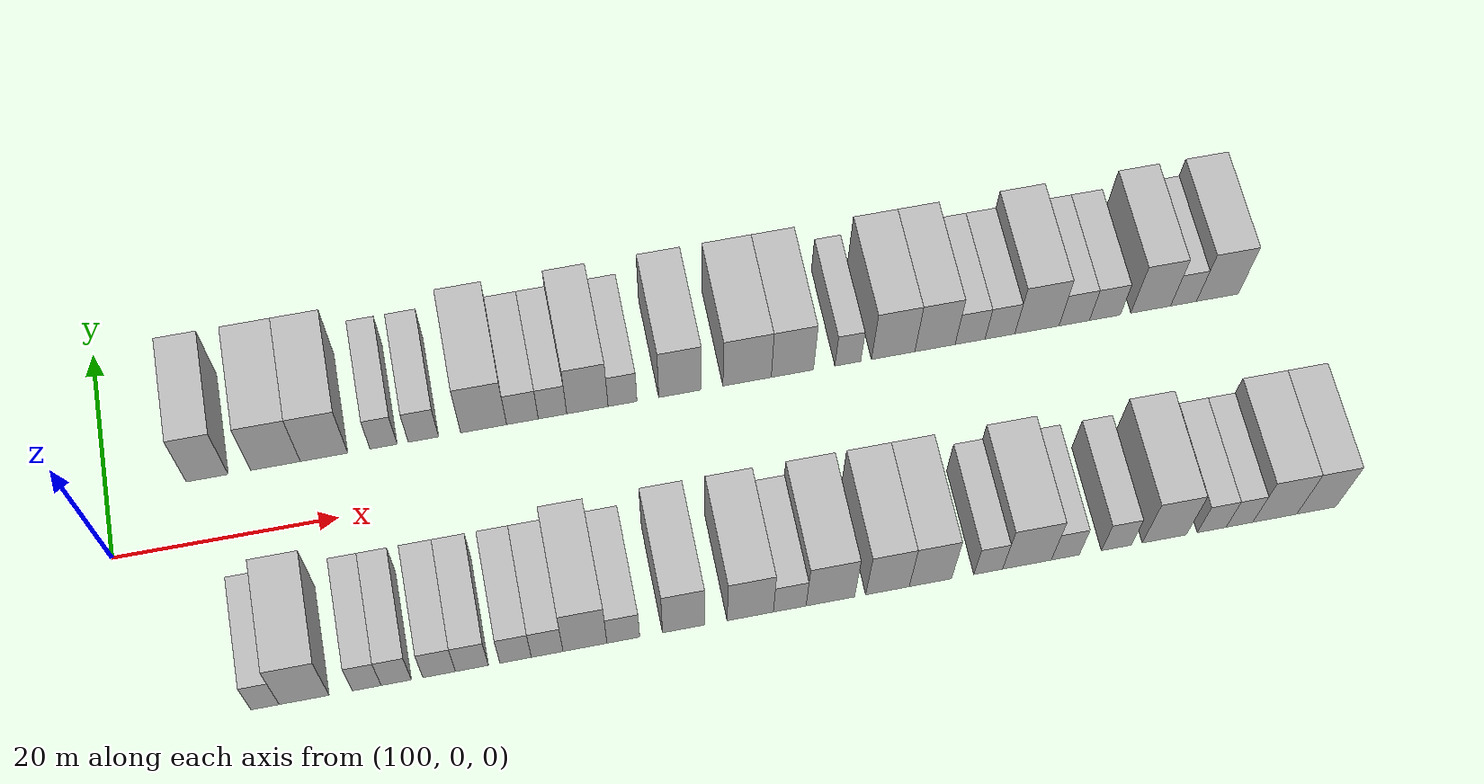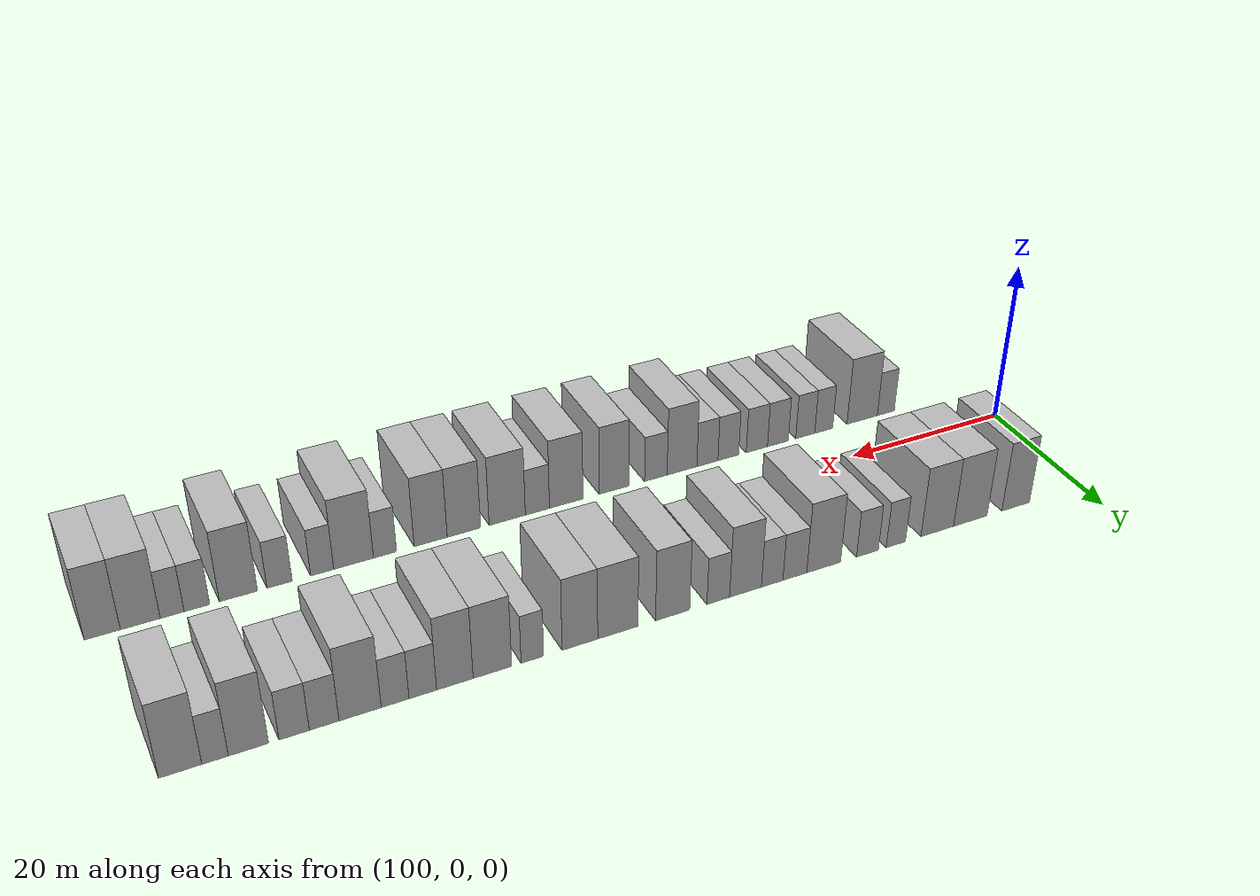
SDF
<sdf version="1.6">
 <world name="default">
  <model name="building_24">
   <static>1</static>
   <pose>108.9423 11.0000 0 0.000000 0.000000 1.570796</pose>
   <link name="link">
    <pose>0 0 4.50 0 0 0</pose>
    <collision name="collision"><geometry><box><size>10.0000 3.7424 9.0000</size></box></geometry></collision>
    <visual name="visual">
     <cast_shadows>0</cast_shadows>
     <geometry><box><size>10.0000 3.7424 9.0000</size></box></geometry>
     <material>
      <script>
       <uri>model://HANNAS_wall/materials/scripts</uri>
       <uri>model://HANNAS_wall/materials/textures</uri>
       <name>vrc/HANNAS_wall</name>
      </script>
     </material>
    </visual>
   </link>
  </model>
  <model name="building_25">
   <static>1</static>
   <pose>115.0368 11.0000 0 0.000000 0.000000 1.570796</pose>
   <link name="link">
    <pose>0 0 4.50 0 0 0</pose>
    <collision name="collision"><geometry><box><size>10.0000 4.4467 9.0000</size></box></geometry></collision>
    <visual name="visual">
     <cast_shadows>0</cast_shadows>
     <geometry><box><size>10.0000 4.4467 9.0000</size></box></geometry>
     <material>
      <script>
       <uri>model://HANNAS_wall/materials/scripts</uri>
       <uri>model://HANNAS_wall/materials/textures</uri>
       <name>vrc/HANNAS_wall</name>
      </script>
     </material>
    </visual>
   </link>
  </model>
  <model name="building_26">
   <static>1</static>
   <pose>119.3937 11.0000 0 0.000000 0.000000 1.570796</pose>
   <link name="link">
    <pose>0 0 4.50 0 0 0</pose>
    <collision name="collision"><geometry><box><size>10.0000 4.2671 9.0000</size></box></geometry></collision>
    <visual name="visual">
     <cast_shadows>0</cast_shadows>
     <geometry><box><size>10.0000 4.2671 9.0000</size></box></geometry>
     <material>
      <script>
       <uri>model://HANNAS_wall/materials/scripts</uri>
       <uri>model://HANNAS_wall/materials/textures</uri>
       <name>vrc/HANNAS_wall</name>
      </script>
     </material>
    </visual>
   </link>
  </model>
  <model name="building_27">
   <static>1</static>
   <pose>124.7551 11.0000 0 0.000000 0.000000 1.570796</pose>
   <link name="link">
    <pose>0 0 3.00 0 0 0</pose>
    <collision name="collision"><geometry><box><size>10.0000 2.4558 6.0000</size></box></geometry></collision>
    <visual name="visual">
     <cast_shadows>0</cast_shadows>
     <geometry><box><size>10.0000 2.4558 6.0000</size></box></geometry>
     <material>
      <script>
       <uri>model://HANNAS_wall/materials/scripts</uri>
       <uri>model://HANNAS_wall/materials/textures</uri>
       <name>vrc/HANNAS_wall</name>
      </script>
     </material>
    </visual>
   </link>
  </model>
  <model name="building_28">
   <static>1</static>
   <pose>128.3586 11.0000 0 0.000000 0.000000 1.570796</pose>
   <link name="link">
    <pose>0 0 3.00 0 0 0</pose>
    <collision name="collision"><geometry><box><size>10.0000 2.7511 6.0000</size></box></geometry></collision>
    <visual name="visual">
     <cast_shadows>0</cast_shadows>
     <geometry><box><size>10.0000 2.7511 6.0000</size></box></geometry>
     <material>
      <script>
       <uri>model://HANNAS_wall/materials/scripts</uri>
       <uri>model://HANNAS_wall/materials/textures</uri>
       <name>vrc/HANNAS_wall</name>
      </script>
     </material>
    </visual>
   </link>
  </model>
  <model name="building_29">
   <static>1</static>
   <pose>133.8194 11.0000 0 0.000000 0.000000 1.570796</pose>
   <link name="link">
    <pose>0 0 4.50 0 0 0</pose>
    <collision name="collision"><geometry><box><size>10.0000 4.1705 9.0000</size></box></geometry></collision>
    <visual name="visual">
     <cast_shadows>0</cast_shadows>
     <geometry><box><size>10.0000 4.1705 9.0000</size></box></geometry>
     <material>
      <script>
       <uri>model://HANNAS_wall/materials/scripts</uri>
       <uri>model://HANNAS_wall/materials/textures</uri>
       <name>vrc/HANNAS_wall</name>
      </script>
     </material>
    </visual>
   </link>
  </model>
  <model name="building_30">
   <static>1</static>
   <pose>137.3507 11.0000 0 0.000000 0.000000 1.570796</pose>
   <link name="link">
    <pose>0 0 3.00 0 0 0</pose>
    <collision name="collision"><geometry><box><size>10.0000 2.8921 6.0000</size></box></geometry></collision>
    <visual name="visual">
     <cast_shadows>0</cast_shadows>
     <geometry><box><size>10.0000 2.8921 6.0000</size></box></geometry>
     <material>
      <script>
       <uri>model://HANNAS_wall/materials/scripts</uri>
       <uri>model://HANNAS_wall/materials/textures</uri>
       <name>vrc/HANNAS_wall</name>
      </script>
     </material>
    </visual>
   </link>
  </model>
  <model name="building_31">
   <static>1</static>
   <pose>140.0974 11.0000 0 0.000000 0.000000 1.570796</pose>
   <link name="link">
    <pose>0 0 3.00 0 0 0</pose>
    <collision name="collision"><geometry><box><size>10.0000 2.6012 6.0000</size></box></geometry></collision>
    <visual name="visual">
     <cast_shadows>0</cast_shadows>
     <geometry><box><size>10.0000 2.6012 6.0000</size></box></geometry>
     <material>
      <script>
       <uri>model://HANNAS_wall/materials/scripts</uri>
       <uri>model://HANNAS_wall/materials/textures</uri>
       <name>vrc/HANNAS_wall</name>
      </script>
     </material>
    </visual>
   </link>
  </model>
  <model name="building_32">
   <static>1</static>
   <pose>143.2876 11.0000 0 0.000000 0.000000 1.570796</pose>
   <link name="link">
    <pose>0 0 4.50 0 0 0</pose>
    <collision name="collision"><geometry><box><size>10.0000 3.7792 9.0000</size></box></geometry></collision>
    <visual name="visual">
     <cast_shadows>0</cast_shadows>
     <geometry><box><size>10.0000 3.7792 9.0000</size></box></geometry>
     <material>
      <script>
       <uri>model://HANNAS_wall/materials/scripts</uri>
       <uri>model://HANNAS_wall/materials/textures</uri>
       <name>vrc/HANNAS_wall</name>
      </script>
     </material>
    </visual>
   </link>
  </model>
  <model name="building_33">
   <static>1</static>
   <pose>146.5038 11.0000 0 0.000000 0.000000 1.570796</pose>
   <link name="link">
    <pose>0 0 3.00 0 0 0</pose>
    <collision name="collision"><geometry><box><size>10.0000 2.6533 6.0000</size></box></geometry></collision>
    <visual name="visual">
     <cast_shadows>0</cast_shadows>
     <geometry><box><size>10.0000 2.6533 6.0000</size></box></geometry>
     <material>
      <script>
       <uri>model://HANNAS_wall/materials/scripts</uri>
       <uri>model://HANNAS_wall/materials/textures</uri>
       <name>vrc/HANNAS_wall</name>
      </script>
     </material>
    </visual>
   </link>
  </model>
  <model name="building_34">
   <static>1</static>
   <pose>151.7915 11.0000 0 0.000000 0.000000 1.570796</pose>
   <link name="link">
    <pose>0 0 4.50 0 0 0</pose>
    <collision name="collision"><geometry><box><size>10.0000 3.9221 9.0000</size></box></geometry></collision>
    <visual name="visual">
     <cast_shadows>0</cast_shadows>
     <geometry><box><size>10.0000 3.9221 9.0000</size></box></geometry>
     <material>
      <script>
       <uri>model://HANNAS_wall/materials/scripts</uri>
       <uri>model://HANNAS_wall/materials/textures</uri>
       <name>vrc/HANNAS_wall</name>
      </script>
     </material>
    </visual>
   </link>
  </model>
  <model name="building_35">
   <static>1</static>
   <pose>157.9924 11.0000 0 0.000000 0.000000 1.570796</pose>
   <link name="link">
    <pose>0 0 4.50 0 0 0</pose>
    <collision name="collision"><geometry><box><size>10.0000 4.4797 9.0000</size></box></geometry></collision>
    <visual name="visual">
     <cast_shadows>0</cast_shadows>
     <geometry><box><size>10.0000 4.4797 9.0000</size></box></geometry>
     <material>
      <script>
       <uri>model://HANNAS_wall/materials/scripts</uri>
       <uri>model://HANNAS_wall/materials/textures</uri>
       <name>vrc/HANNAS_wall</name>
      </script>
     </material>
    </visual>
   </link>
  </model>
  <model name="building_36">
   <static>1</static>
   <pose>162.1914 11.0000 0 0.000000 0.000000 1.570796</pose>
   <link name="link">
    <pose>0 0 4.50 0 0 0</pose>
    <collision name="collision"><geometry><box><size>10.0000 3.9184 9.0000</size></box></geometry></collision>
    <visual name="visual">
     <cast_shadows>0</cast_shadows>
     <geometry><box><size>10.0000 3.9184 9.0000</size></box></geometry>
     <material>
      <script>
       <uri>model://HANNAS_wall/materials/scripts</uri>
       <uri>model://HANNAS_wall/materials/textures</uri>
       <name>vrc/HANNAS_wall</name>
      </script>
     </material>
    </visual>
   </link>
  </model>
  <model name="building_37">
   <static>1</static>
   <pose>167.3576 11.0000 0 0.000000 0.000000 1.570796</pose>
   <link name="link">
    <pose>0 0 3.00 0 0 0</pose>
    <collision name="collision"><geometry><box><size>10.0000 2.4139 6.0000</size></box></geometry></collision>
    <visual name="visual">
     <cast_shadows>0</cast_shadows>
     <geometry><box><size>10.0000 2.4139 6.0000</size></box></geometry>
     <material>
      <script>
       <uri>model://HANNAS_wall/materials/scripts</uri>
       <uri>model://HANNAS_wall/materials/textures</uri>
       <name>vrc/HANNAS_wall</name>
      </script>
     </material>
    </visual>
   </link>
  </model>
  <model name="building_38">
   <static>1</static>
   <pose>171.5949 11.0000 0 0.000000 0.000000 1.570796</pose>
   <link name="link">
    <pose>0 0 4.50 0 0 0</pose>
    <collision name="collision"><geometry><box><size>10.0000 4.0607 9.0000</size></box></geometry></collision>
    <visual name="visual">
     <cast_shadows>0</cast_shadows>
     <geometry><box><size>10.0000 4.0607 9.0000</size></box></geometry>
     <material>
      <script>
       <uri>model://HANNAS_wall/materials/scripts</uri>
       <uri>model://HANNAS_wall/materials/textures</uri>
       <name>vrc/HANNAS_wall</name>
      </script>
     </material>
    </visual>
   </link>
  </model>
  <model name="building_39">
   <static>1</static>
   <pose>175.5178 11.0000 0 0.000000 0.000000 1.570796</pose>
   <link name="link">
    <pose>0 0 4.50 0 0 0</pose>
    <collision name="collision"><geometry><box><size>10.0000 3.7851 9.0000</size></box></geometry></collision>
    <visual name="visual">
     <cast_shadows>0</cast_shadows>
     <geometry><box><size>10.0000 3.7851 9.0000</size></box></geometry>
     <material>
      <script>
       <uri>model://HANNAS_wall/materials/scripts</uri>
       <uri>model://HANNAS_wall/materials/textures</uri>
       <name>vrc/HANNAS_wall</name>
      </script>
     </material>
    </visual>
   </link>
  </model>
  <model name="building_40">
   <static>1</static>
   <pose>178.8198 11.0000 0 0.000000 0.000000 1.570796</pose>
   <link name="link">
    <pose>0 0 3.00 0 0 0</pose>
    <collision name="collision"><geometry><box><size>10.0000 2.8188 6.0000</size></box></geometry></collision>
    <visual name="visual">
     <cast_shadows>0</cast_shadows>
     <geometry><box><size>10.0000 2.8188 6.0000</size></box></geometry>
     <material>
      <script>
       <uri>model://HANNAS_wall/materials/scripts</uri>
       <uri>model://HANNAS_wall/materials/textures</uri>
       <name>vrc/HANNAS_wall</name>
      </script>
     </material>
    </visual>
   </link>
  </model>
  <model name="building_41">
   <static>1</static>
   <pose>181.6317 11.0000 0 0.000000 0.000000 1.570796</pose>
   <link name="link">
    <pose>0 0 3.00 0 0 0</pose>
    <collision name="collision"><geometry><box><size>10.0000 2.8050 6.0000</size></box></geometry></collision>
    <visual name="visual">
     <cast_shadows>0</cast_shadows>
     <geometry><box><size>10.0000 2.8050 6.0000</size></box></geometry>
     <material>
      <script>
       <uri>model://HANNAS_wall/materials/scripts</uri>
       <uri>model://HANNAS_wall/materials/textures</uri>
       <name>vrc/HANNAS_wall</name>
      </script>
     </material>
    </visual>
   </link>
  </model>
  <model name="building_42">
   <static>1</static>
   <pose>185.1262 11.0000 0 0.000000 0.000000 1.570796</pose>
   <link name="link">
    <pose>0 0 4.50 0 0 0</pose>
    <collision name="collision"><geometry><box><size>10.0000 4.1840 9.0000</size></box></geometry></collision>
    <visual name="visual">
     <cast_shadows>0</cast_shadows>
     <geometry><box><size>10.0000 4.1840 9.0000</size></box></geometry>
     <material>
      <script>
       <uri>model://HANNAS_wall/materials/scripts</uri>
       <uri>model://HANNAS_wall/materials/textures</uri>
       <name>vrc/HANNAS_wall</name>
      </script>
     </material>
    </visual>
   </link>
  </model>
  <model name="building_43">
   <static>1</static>
   <pose>188.6675 11.0000 0 0.000000 0.000000 1.570796</pose>
   <link name="link">
    <pose>0 0 3.00 0 0 0</pose>
    <collision name="collision"><geometry><box><size>10.0000 2.8985 6.0000</size></box></geometry></collision>
    <visual name="visual">
     <cast_shadows>0</cast_shadows>
     <geometry><box><size>10.0000 2.8985 6.0000</size></box></geometry>
     <material>
      <script>
       <uri>model://HANNAS_wall/materials/scripts</uri>
       <uri>model://HANNAS_wall/materials/textures</uri>
       <name>vrc/HANNAS_wall</name>
      </script>
     </material>
    </visual>
   </link>
  </model>
  <model name="building_44">
   <static>1</static>
   <pose>191.5837 11.0000 0 0.000000 0.000000 1.570796</pose>
   <link name="link">
    <pose>0 0 3.00 0 0 0</pose>
    <collision name="collision"><geometry><box><size>10.0000 2.9341 6.0000</size></box></geometry></collision>
    <visual name="visual">
     <cast_shadows>0</cast_shadows>
     <geometry><box><size>10.0000 2.9341 6.0000</size></box></geometry>
     <material>
      <script>
       <uri>model://HANNAS_wall/materials/scripts</uri>
       <uri>model://HANNAS_wall/materials/textures</uri>
       <name>vrc/HANNAS_wall</name>
      </script>
     </material>
    </visual>
   </link>
  </model>
  <model name="building_45">
   <static>1</static>
   <pose>195.9480 11.0000 0 0.000000 0.000000 1.570796</pose>
   <link name="link">
    <pose>0 0 4.50 0 0 0</pose>
    <collision name="collision"><geometry><box><size>10.0000 3.7945 9.0000</size></box></geometry></collision>
    <visual name="visual">
     <cast_shadows>0</cast_shadows>
     <geometry><box><size>10.0000 3.7945 9.0000</size></box></geometry>
     <material>
      <script>
       <uri>model://HANNAS_wall/materials/scripts</uri>
       <uri>model://HANNAS_wall/materials/textures</uri>
       <name>vrc/HANNAS_wall</name>
      </script>
     </material>
    </visual>
   </link>
  </model>
  <model name="building_46">
   <static>1</static>
   <pose>199.0831 11.0000 0 0.000000 0.000000 1.570796</pose>
   <link name="link">
    <pose>0 0 3.00 0 0 0</pose>
    <collision name="collision"><geometry><box><size>10.0000 2.4755 6.0000</size></box></geometry></collision>
    <visual name="visual">
     <cast_shadows>0</cast_shadows>
     <geometry><box><size>10.0000 2.4755 6.0000</size></box></geometry>
     <material>
      <script>
       <uri>model://HANNAS_wall/materials/scripts</uri>
       <uri>model://HANNAS_wall/materials/textures</uri>
       <name>vrc/HANNAS_wall</name>
      </script>
     </material>
    </visual>
   </link>
  </model>
  <model name="building_47">
   <static>1</static>
   <pose>202.3173 11.0000 0 0.000000 0.000000 1.570796</pose>
   <link name="link">
    <pose>0 0 4.50 0 0 0</pose>
    <collision name="collision"><geometry><box><size>10.0000 3.9930 9.0000</size></box></geometry></collision>
    <visual name="visual">
     <cast_shadows>0</cast_shadows>
     <geometry><box><size>10.0000 3.9930 9.0000</size></box></geometry>
     <material>
      <script>
       <uri>model://HANNAS_wall/materials/scripts</uri>
       <uri>model://HANNAS_wall/materials/textures</uri>
       <name>vrc/HANNAS_wall</name>
      </script>
     </material>
    </visual>
   </link>
  </model>
  <model name="building_74">
   <static>1</static>
   <pose>111.5877 -11.0000 0 0.000000 0.000000 1.570796</pose>
   <link name="link">
    <pose>0 0 3.00 0 0 0</pose>
    <collision name="collision"><geometry><box><size>10.0000 2.4177 6.0000</size></box></geometry></collision>
    <visual name="visual">
     <cast_shadows>0</cast_shadows>
     <geometry><box><size>10.0000 2.4177 6.0000</size></box></geometry>
     <material>
      <script>
       <uri>model://HANNAS_wall/materials/scripts</uri>
       <uri>model://HANNAS_wall/materials/textures</uri>
       <name>vrc/HANNAS_wall</name>
      </script>
     </material>
    </visual>
   </link>
  </model>
  <model name="building_75">
   <static>1</static>
   <pose>114.9327 -11.0000 0 0.000000 0.000000 1.570796</pose>
   <link name="link">
    <pose>0 0 4.50 0 0 0</pose>
    <collision name="collision"><geometry><box><size>10.0000 4.2722 9.0000</size></box></geometry></collision>
    <visual name="visual">
     <cast_shadows>0</cast_shadows>
     <geometry><box><size>10.0000 4.2722 9.0000</size></box></geometry>
     <material>
      <script>
       <uri>model://HANNAS_wall/materials/scripts</uri>
       <uri>model://HANNAS_wall/materials/textures</uri>
       <name>vrc/HANNAS_wall</name>
      </script>
     </material>
    </visual>
   </link>
  </model>
  <model name="building_76">
   <static>1</static>
   <pose>120.3093 -11.0000 0 0.000000 0.000000 1.570796</pose>
   <link name="link">
    <pose>0 0 3.00 0 0 0</pose>
    <collision name="collision"><geometry><box><size>10.0000 2.4809 6.0000</size></box></geometry></collision>
    <visual name="visual">
     <cast_shadows>0</cast_shadows>
     <geometry><box><size>10.0000 2.4809 6.0000</size></box></geometry>
     <material>
      <script>
       <uri>model://HANNAS_wall/materials/scripts</uri>
       <uri>model://HANNAS_wall/materials/textures</uri>
       <name>vrc/HANNAS_wall</name>
      </script>
     </material>
    </visual>
   </link>
  </model>
  <model name="building_77">
   <static>1</static>
   <pose>122.8504 -11.0000 0 0.000000 0.000000 1.570796</pose>
   <link name="link">
    <pose>0 0 3.00 0 0 0</pose>
    <collision name="collision"><geometry><box><size>10.0000 2.6013 6.0000</size></box></geometry></collision>
    <visual name="visual">
     <cast_shadows>0</cast_shadows>
     <geometry><box><size>10.0000 2.6013 6.0000</size></box></geometry>
     <material>
      <script>
       <uri>model://HANNAS_wall/materials/scripts</uri>
       <uri>model://HANNAS_wall/materials/textures</uri>
       <name>vrc/HANNAS_wall</name>
      </script>
     </material>
    </visual>
   </link>
  </model>
  <model name="building_78">
   <static>1</static>
   <pose>126.5606 -11.0000 0 0.000000 0.000000 1.570796</pose>
   <link name="link">
    <pose>0 0 3.00 0 0 0</pose>
    <collision name="collision"><geometry><box><size>10.0000 2.8190 6.0000</size></box></geometry></collision>
    <visual name="visual">
     <cast_shadows>0</cast_shadows>
     <geometry><box><size>10.0000 2.8190 6.0000</size></box></geometry>
     <material>
      <script>
       <uri>model://HANNAS_wall/materials/scripts</uri>
       <uri>model://HANNAS_wall/materials/textures</uri>
       <name>vrc/HANNAS_wall</name>
      </script>
     </material>
    </visual>
   </link>
  </model>
  <model name="building_79">
   <static>1</static>
   <pose>129.3953 -11.0000 0 0.000000 0.000000 1.570796</pose>
   <link name="link">
    <pose>0 0 3.00 0 0 0</pose>
    <collision name="collision"><geometry><box><size>10.0000 2.8506 6.0000</size></box></geometry></collision>
    <visual name="visual">
     <cast_shadows>0</cast_shadows>
     <geometry><box><size>10.0000 2.8506 6.0000</size></box></geometry>
     <material>
      <script>
       <uri>model://HANNAS_wall/materials/scripts</uri>
       <uri>model://HANNAS_wall/materials/textures</uri>
       <name>vrc/HANNAS_wall</name>
      </script>
     </material>
    </visual>
   </link>
  </model>
  <model name="building_80">
   <static>1</static>
   <pose>133.1875 -11.0000 0 0.000000 0.000000 1.570796</pose>
   <link name="link">
    <pose>0 0 3.00 0 0 0</pose>
    <collision name="collision"><geometry><box><size>10.0000 2.7339 6.0000</size></box></geometry></collision>
    <visual name="visual">
     <cast_shadows>0</cast_shadows>
     <geometry><box><size>10.0000 2.7339 6.0000</size></box></geometry>
     <material>
      <script>
       <uri>model://HANNAS_wall/materials/scripts</uri>
       <uri>model://HANNAS_wall/materials/textures</uri>
       <name>vrc/HANNAS_wall</name>
      </script>
     </material>
    </visual>
   </link>
  </model>
  <model name="building_81">
   <static>1</static>
   <pose>135.9299 -11.0000 0 0.000000 0.000000 1.570796</pose>
   <link name="link">
    <pose>0 0 3.00 0 0 0</pose>
    <collision name="collision"><geometry><box><size>10.0000 2.7508 6.0000</size></box></geometry></collision>
    <visual name="visual">
     <cast_shadows>0</cast_shadows>
     <geometry><box><size>10.0000 2.7508 6.0000</size></box></geometry>
     <material>
      <script>
       <uri>model://HANNAS_wall/materials/scripts</uri>
       <uri>model://HANNAS_wall/materials/textures</uri>
       <name>vrc/HANNAS_wall</name>
      </script>
     </material>
    </visual>
   </link>
  </model>
  <model name="building_82">
   <static>1</static>
   <pose>139.2258 -11.0000 0 0.000000 0.000000 1.570796</pose>
   <link name="link">
    <pose>0 0 4.50 0 0 0</pose>
    <collision name="collision"><geometry><box><size>10.0000 3.8410 9.0000</size></box></geometry></collision>
    <visual name="visual">
     <cast_shadows>0</cast_shadows>
     <geometry><box><size>10.0000 3.8410 9.0000</size></box></geometry>
     <material>
      <script>
       <uri>model://HANNAS_wall/materials/scripts</uri>
       <uri>model://HANNAS_wall/materials/textures</uri>
       <name>vrc/HANNAS_wall</name>
      </script>
     </material>
    </visual>
   </link>
  </model>
  <model name="building_83">
   <static>1</static>
   <pose>142.5808 -11.0000 0 0.000000 0.000000 1.570796</pose>
   <link name="link">
    <pose>0 0 3.00 0 0 0</pose>
    <collision name="collision"><geometry><box><size>10.0000 2.8689 6.0000</size></box></geometry></collision>
    <visual name="visual">
     <cast_shadows>0</cast_shadows>
     <geometry><box><size>10.0000 2.8689 6.0000</size></box></geometry>
     <material>
      <script>
       <uri>model://HANNAS_wall/materials/scripts</uri>
       <uri>model://HANNAS_wall/materials/textures</uri>
       <name>vrc/HANNAS_wall</name>
      </script>
     </material>
    </visual>
   </link>
  </model>
  <model name="building_84">
   <static>1</static>
   <pose>147.8618 -11.0000 0 0.000000 0.000000 1.570796</pose>
   <link name="link">
    <pose>0 0 4.50 0 0 0</pose>
    <collision name="collision"><geometry><box><size>10.0000 3.6931 9.0000</size></box></geometry></collision>
    <visual name="visual">
     <cast_shadows>0</cast_shadows>
     <geometry><box><size>10.0000 3.6931 9.0000</size></box></geometry>
     <material>
      <script>
       <uri>model://HANNAS_wall/materials/scripts</uri>
       <uri>model://HANNAS_wall/materials/textures</uri>
       <name>vrc/HANNAS_wall</name>
      </script>
     </material>
    </visual>
   </link>
  </model>
  <model name="building_85">
   <static>1</static>
   <pose>153.7532 -11.0000 0 0.000000 0.000000 1.570796</pose>
   <link name="link">
    <pose>0 0 4.50 0 0 0</pose>
    <collision name="collision"><geometry><box><size>10.0000 4.0897 9.0000</size></box></geometry></collision>
    <visual name="visual">
     <cast_shadows>0</cast_shadows>
     <geometry><box><size>10.0000 4.0897 9.0000</size></box></geometry>
     <material>
      <script>
       <uri>model://HANNAS_wall/materials/scripts</uri>
       <uri>model://HANNAS_wall/materials/textures</uri>
       <name>vrc/HANNAS_wall</name>
      </script>
     </material>
    </visual>
   </link>
  </model>
  <model name="building_86">
   <static>1</static>
   <pose>157.2490 -11.0000 0 0.000000 0.000000 1.570796</pose>
   <link name="link">
    <pose>0 0 3.00 0 0 0</pose>
    <collision name="collision"><geometry><box><size>10.0000 2.9019 6.0000</size></box></geometry></collision>
    <visual name="visual">
     <cast_shadows>0</cast_shadows>
     <geometry><box><size>10.0000 2.9019 6.0000</size></box></geometry>
     <material>
      <script>
       <uri>model://HANNAS_wall/materials/scripts</uri>
       <uri>model://HANNAS_wall/materials/textures</uri>
       <name>vrc/HANNAS_wall</name>
      </script>
     </material>
    </visual>
   </link>
  </model>
  <model name="building_87">
   <static>1</static>
   <pose>160.8537 -11.0000 0 0.000000 0.000000 1.570796</pose>
   <link name="link">
    <pose>0 0 4.50 0 0 0</pose>
    <collision name="collision"><geometry><box><size>10.0000 4.3074 9.0000</size></box></geometry></collision>
    <visual name="visual">
     <cast_shadows>0</cast_shadows>
     <geometry><box><size>10.0000 4.3074 9.0000</size></box></geometry>
     <material>
      <script>
       <uri>model://HANNAS_wall/materials/scripts</uri>
       <uri>model://HANNAS_wall/materials/textures</uri>
       <name>vrc/HANNAS_wall</name>
      </script>
     </material>
    </visual>
   </link>
  </model>
  <model name="building_88">
   <static>1</static>
   <pose>165.9508 -11.0000 0 0.000000 0.000000 1.570796</pose>
   <link name="link">
    <pose>0 0 4.50 0 0 0</pose>
    <collision name="collision"><geometry><box><size>10.0000 3.8868 9.0000</size></box></geometry></collision>
    <visual name="visual">
     <cast_shadows>0</cast_shadows>
     <geometry><box><size>10.0000 3.8868 9.0000</size></box></geometry>
     <material>
      <script>
       <uri>model://HANNAS_wall/materials/scripts</uri>
       <uri>model://HANNAS_wall/materials/textures</uri>
       <name>vrc/HANNAS_wall</name>
      </script>
     </material>
    </visual>
   </link>
  </model>
  <model name="building_89">
   <static>1</static>
   <pose>169.7916 -11.0000 0 0.000000 0.000000 1.570796</pose>
   <link name="link">
    <pose>0 0 4.50 0 0 0</pose>
    <collision name="collision"><geometry><box><size>10.0000 3.7949 9.0000</size></box></geometry></collision>
    <visual name="visual">
     <cast_shadows>0</cast_shadows>
     <geometry><box><size>10.0000 3.7949 9.0000</size></box></geometry>
     <material>
      <script>
       <uri>model://HANNAS_wall/materials/scripts</uri>
       <uri>model://HANNAS_wall/materials/textures</uri>
       <name>vrc/HANNAS_wall</name>
      </script>
     </material>
    </visual>
   </link>
  </model>
  <model name="building_90">
   <static>1</static>
   <pose>174.9838 -11.0000 0 0.000000 0.000000 1.570796</pose>
   <link name="link">
    <pose>0 0 3.00 0 0 0</pose>
    <collision name="collision"><geometry><box><size>10.0000 2.5894 6.0000</size></box></geometry></collision>
    <visual name="visual">
     <cast_shadows>0</cast_shadows>
     <geometry><box><size>10.0000 2.5894 6.0000</size></box></geometry>
     <material>
      <script>
       <uri>model://HANNAS_wall/materials/scripts</uri>
       <uri>model://HANNAS_wall/materials/textures</uri>
       <name>vrc/HANNAS_wall</name>
      </script>
     </material>
    </visual>
   </link>
  </model>
  <model name="building_91">
   <static>1</static>
   <pose>178.4813 -11.0000 0 0.000000 0.000000 1.570796</pose>
   <link name="link">
    <pose>0 0 4.50 0 0 0</pose>
    <collision name="collision"><geometry><box><size>10.0000 4.4056 9.0000</size></box></geometry></collision>
    <visual name="visual">
     <cast_shadows>0</cast_shadows>
     <geometry><box><size>10.0000 4.4056 9.0000</size></box></geometry>
     <material>
      <script>
       <uri>model://HANNAS_wall/materials/scripts</uri>
       <uri>model://HANNAS_wall/materials/textures</uri>
       <name>vrc/HANNAS_wall</name>
      </script>
     </material>
    </visual>
   </link>
  </model>
  <model name="building_92">
   <static>1</static>
   <pose>181.9466 -11.0000 0 0.000000 0.000000 1.570796</pose>
   <link name="link">
    <pose>0 0 3.00 0 0 0</pose>
    <collision name="collision"><geometry><box><size>10.0000 2.5250 6.0000</size></box></geometry></collision>
    <visual name="visual">
     <cast_shadows>0</cast_shadows>
     <geometry><box><size>10.0000 2.5250 6.0000</size></box></geometry>
     <material>
      <script>
       <uri>model://HANNAS_wall/materials/scripts</uri>
       <uri>model://HANNAS_wall/materials/textures</uri>
       <name>vrc/HANNAS_wall</name>
      </script>
     </material>
    </visual>
   </link>
  </model>
  <model name="building_93">
   <static>1</static>
   <pose>186.5686 -11.0000 0 0.000000 0.000000 1.570796</pose>
   <link name="link">
    <pose>0 0 3.00 0 0 0</pose>
    <collision name="collision"><geometry><box><size>10.0000 2.7190 6.0000</size></box></geometry></collision>
    <visual name="visual">
     <cast_shadows>0</cast_shadows>
     <geometry><box><size>10.0000 2.7190 6.0000</size></box></geometry>
     <material>
      <script>
       <uri>model://HANNAS_wall/materials/scripts</uri>
       <uri>model://HANNAS_wall/materials/textures</uri>
       <name>vrc/HANNAS_wall</name>
      </script>
     </material>
    </visual>
   </link>
  </model>
  <model name="building_94">
   <static>1</static>
   <pose>190.9398 -11.0000 0 0.000000 0.000000 1.570796</pose>
   <link name="link">
    <pose>0 0 4.50 0 0 0</pose>
    <collision name="collision"><geometry><box><size>10.0000 4.0235 9.0000</size></box></geometry></collision>
    <visual name="visual">
     <cast_shadows>0</cast_shadows>
     <geometry><box><size>10.0000 4.0235 9.0000</size></box></geometry>
     <material>
      <script>
       <uri>model://HANNAS_wall/materials/scripts</uri>
       <uri>model://HANNAS_wall/materials/textures</uri>
       <name>vrc/HANNAS_wall</name>
      </script>
     </material>
    </visual>
   </link>
  </model>
  <model name="building_95">
   <static>1</static>
   <pose>195.2740 -11.0000 0 0.000000 0.000000 1.570796</pose>
   <link name="link">
    <pose>0 0 3.00 0 0 0</pose>
    <collision name="collision"><geometry><box><size>10.0000 2.6449 6.0000</size></box></geometry></collision>
    <visual name="visual">
     <cast_shadows>0</cast_shadows>
     <geometry><box><size>10.0000 2.6449 6.0000</size></box></geometry>
     <material>
      <script>
       <uri>model://HANNAS_wall/materials/scripts</uri>
       <uri>model://HANNAS_wall/materials/textures</uri>
       <name>vrc/HANNAS_wall</name>
      </script>
     </material>
    </visual>
   </link>
  </model>
  <model name="building_96">
   <static>1</static>
   <pose>197.8183 -11.0000 0 0.000000 0.000000 1.570796</pose>
   <link name="link">
    <pose>0 0 3.00 0 0 0</pose>
    <collision name="collision"><geometry><box><size>10.0000 2.4437 6.0000</size></box></geometry></collision>
    <visual name="visual">
     <cast_shadows>0</cast_shadows>
     <geometry><box><size>10.0000 2.4437 6.0000</size></box></geometry>
     <material>
      <script>
       <uri>model://HANNAS_wall/materials/scripts</uri>
       <uri>model://HANNAS_wall/materials/textures</uri>
       <name>vrc/HANNAS_wall</name>
      </script>
     </material>
    </visual>
   </link>
  </model>
  <model name="building_97">
   <static>1</static>
   <pose>201.0612 -11.0000 0 0.000000 0.000000 1.570796</pose>
   <link name="link">
    <pose>0 0 4.50 0 0 0</pose>
    <collision name="collision"><geometry><box><size>10.0000 4.0422 9.0000</size></box></geometry></collision>
    <visual name="visual">
     <cast_shadows>0</cast_shadows>
     <geometry><box><size>10.0000 4.0422 9.0000</size></box></geometry>
     <material>
      <script>
       <uri>model://HANNAS_wall/materials/scripts</uri>
       <uri>model://HANNAS_wall/materials/textures</uri>
       <name>vrc/HANNAS_wall</name>
      </script>
     </material>
    </visual>
   </link>
  </model>
  <model name="building_98">
   <static>1</static>
   <pose>204.8836 -11.0000 0 0.000000 0.000000 1.570796</pose>
   <link name="link">
    <pose>0 0 4.50 0 0 0</pose>
    <collision name="collision"><geometry><box><size>10.0000 3.6025 9.0000</size></box></geometry></collision>
    <visual name="visual">
     <cast_shadows>0</cast_shadows>
     <geometry><box><size>10.0000 3.6025 9.0000</size></box></geometry>
     <material>
      <script>
       <uri>model://HANNAS_wall/materials/scripts</uri>
       <uri>model://HANNAS_wall/materials/textures</uri>
       <name>vrc/HANNAS_wall</name>
      </script>
     </material>
    </visual>
   </link>
  </model>
 </world>
</sdf>
